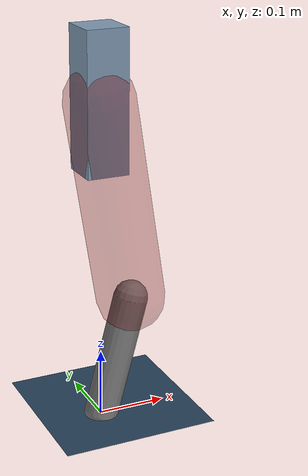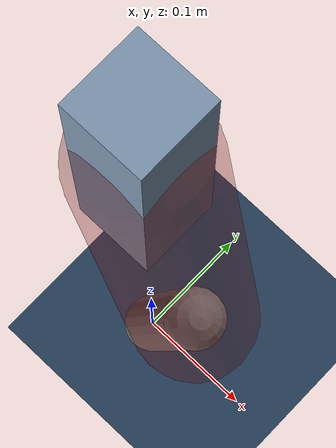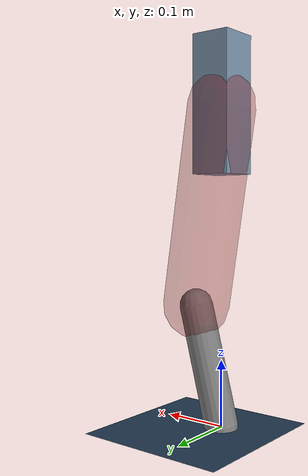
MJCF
<mujoco model="Hopper2D">
	<compiler inertiafromgeom="true" angle="radian" />
	<option timestep="0.001" integrator="implicit" cone="elliptic" solver="Newton" tolerance="1e-10" />

	<default>
		<geom contype="1" conaffinity="1" condim="3" friction="2 0.005 0.0001" solref="0.005 1" />
		<joint limited="true" damping="0.1" />
	</default>

	<asset>
		<texture name="skybox" type="skybox" builtin="gradient" rgb1=".4 .6 .8" rgb2="0 0 0" width="800" height="800" />
		<texture name="grid" type="2d" builtin="checker" rgb1=".1 .2 .3" rgb2=".2 .3 .4" width="300" height="300" mark="edge" markrgb=".2 .3 .4" />
		<material name="ground" texture="grid" texrepeat="1 1" texuniform="true" reflectance="0.1" />
		<material name="leg" rgba="0.5 0.6 0.7 1" />
	</asset>

	<worldbody>

		<geom name="floor" type="plane" size="5 5 0.25" material="ground" />

		<light directional="false" diffuse="0.8 0.8 0.8" specular="0.3 0.3 0.3" pos="0 0 2" dir="0 0 -1" />
		<light mode="targetbodycom" target="base" directional="false" diffuse="0.8 0.8 0.8" specular="0.3 0.3 0.3" pos="0 0 2" dir="0 0 -1" />

		<camera name="fixed" pos="0 -2 1" xyaxes="1 0 0 0 0 1" />
		<camera name="tracking" mode="trackcom" pos="0 -3 1" />

		<body name="root" pos="0 0 0.4740559665527643">
			<joint name="slide_x" type="slide" axis="1 0 0" range="-100 100" />
			<joint name="slide_z" type="slide" axis="0 0 1" range="0 10" />

			<body name="base" pos="0 0 0">
				<geom name="torso" type="box" size="0.03 0.03 0.1" mass="2.363" material="leg" />

				<body name="link1" pos="0 0 0" euler="0 1.4115119419650308 0">
					<joint type="hinge" axis="0 -1 0" pos="0 0 0" name="hinge1" limited="true" range="-3.14 3.14" stiffness="0" damping="0.1" />
					<geom name="thigh" type="capsule" fromto="0 0 0 0.2993902381931043 0 0" size="0.05" rgba="0.5 0 0 0.3" mass="0.9870536431213816" />

					<body name="link2" pos="0.2993902381931043 0 0" euler="0 0.41935624850306513 0">
						<joint type="hinge" axis="0 -1 0" pos="0 0 0" name="hinge2" limited="true" range="-3.14 3.14" stiffness="0" damping="0.1" />
						<geom name="shank" type="capsule" fromto="0 0 0 0.18466572835965997 0 0" size="0.025" mass="0.387899155523694" />

					</body>
				</body>
			</body>
		</body>
	</worldbody>

	<actuator>
		<motor name="torque1" joint="hinge1" ctrlrange="-57.100245155252914 57.100245155252914" ctrllimited="true" gear="1" />
		<motor name="torque2" joint="hinge2" ctrlrange="-42.569548934189584 42.569548934189584" ctrllimited="true" gear="1" />
	</actuator>
</mujoco>
